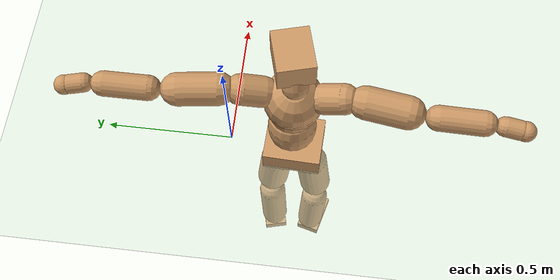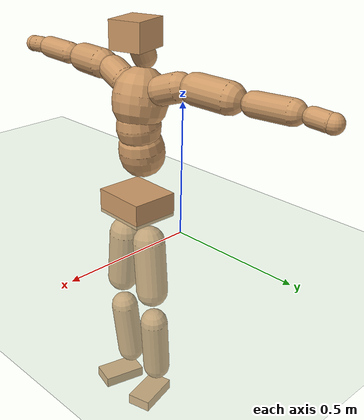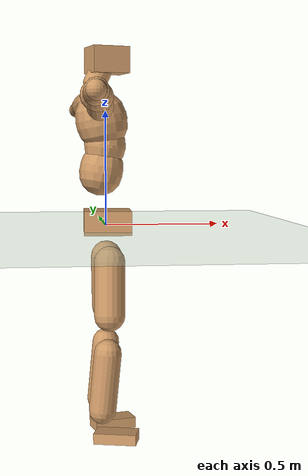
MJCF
<mujoco model="humanoid">
  <compiler coordinate="local" angle="radian"/>
  <default>
    <joint damping="0.0" armature="0.01" stiffness="0.0" limited="true"/>
    <geom conaffinity="1" condim="3" contype="7" margin="0.001" rgba="0.8 0.6 .4 1"/>
  </default>
  <asset>
    <texture type="skybox" builtin="gradient" rgb1=".4 .5 .6" rgb2="0 0 0" width="100" height="100"/>
    <texture builtin="flat" height="1278" mark="cross" markrgb="1 1 1" name="texgeom" random="0.01" rgb1="0.8 0.6 0.4" rgb2="0.8 0.6 0.4" type="cube" width="127"/>
    <texture builtin="checker" height="100" name="texplane" rgb1="0 0 0" rgb2="0.8 0.8 0.8" type="2d" width="100"/>
    <material name="MatPlane" reflectance="0.5" shininess="1" specular="1" texrepeat="60 60" texture="texplane"/>
    <material name="geom" texture="texgeom" texuniform="true"/>
  </asset>
  <worldbody>
    <light cutoff="100" diffuse="1 1 1" dir="-0 0 -1.3" directional="true" exponent="1" pos="0 0 1.3" specular=".1 .1 .1"/>
    <geom conaffinity="1" condim="3" name="floor" pos="0 0 0" rgba="0.8 0.9 0.8 1" size="100 100 .2" type="plane" material="MatPlane"/>
    <body name="Pelvis" pos="-0.002 -0.2545 0.0407">
      <freejoint name="Pelvis"/>
      <geom type="box" contype="1" conaffinity="1" density="500" pos="-0.0107 0.0004 -0.0075" size="0.0959 0.1112 0.0492" quat="0.9998 0.0000 0.0000 -0.0195" name="Pelvis"/>
      <body name="L_Hip" pos="-0.0115 0.062 -0.0848">
        <joint name="L_Hip_x" type="hinge" pos="0 0 0" axis="1 0 0" stiffness="800" damping="80" armature="0.02" range="-180.0000 180.0000"/>
        <joint name="L_Hip_y" type="hinge" pos="0 0 0" axis="0 1 0" stiffness="800" damping="80" armature="0.02" range="-180.0000 180.0000"/>
        <joint name="L_Hip_z" type="hinge" pos="0 0 0" axis="0 0 1" stiffness="800" damping="80" armature="0.02" range="-180.0000 180.0000"/>
        <geom type="capsule" contype="1" conaffinity="1" density="500" fromto="0.0015 0.0076 -0.0730 0.0060 0.0303 -0.2921" size="0.0647" name="L_Hip"/>
        <body name="L_Knee" pos="0.0074 0.0378 -0.3652">
          <joint name="L_Knee_x" type="hinge" pos="0 0 0" axis="1 0 0" stiffness="800" damping="80" armature="0.02" range="-180.0000 180.0000"/>
          <joint name="L_Knee_y" type="hinge" pos="0 0 0" axis="0 1 0" stiffness="800" damping="80" armature="0.02" range="-180.0000 180.0000"/>
          <joint name="L_Knee_z" type="hinge" pos="0 0 0" axis="0 0 1" stiffness="800" damping="80" armature="0.02" range="-180.0000 180.0000"/>
          <geom type="capsule" contype="1" conaffinity="1" density="500" fromto="-0.0081 -0.0032 -0.0819 -0.0322 -0.0129 -0.3278" size="0.0569" name="L_Knee"/>
          <body name="L_Ankle" pos="-0.0403 -0.0162 -0.4097">
            <joint name="L_Ankle_x" type="hinge" pos="0 0 0" axis="1 0 0" stiffness="800" damping="80" armature="0.02" range="-180.0000 180.0000"/>
            <joint name="L_Ankle_y" type="hinge" pos="0 0 0" axis="0 1 0" stiffness="800" damping="80" armature="0.02" range="-180.0000 180.0000"/>
            <joint name="L_Ankle_z" type="hinge" pos="0 0 0" axis="0 0 1" stiffness="800" damping="80" armature="0.02" range="-180.0000 180.0000"/>
            <geom type="box" contype="1" conaffinity="1" density="500" pos="0.0606 0.0154 -0.0284" size="0.0886 0.0493 0.0227" quat="0.9923 0.0000 0.0000 0.1240" name="L_Ankle"/>
            <body name="L_Toe" pos="0.1211 0.0307 -0.0569">
              <joint name="L_Toe_x" type="hinge" pos="0 0 0" axis="1 0 0" stiffness="500" damping="50" armature="0.02" range="-180.0000 180.0000"/>
              <joint name="L_Toe_y" type="hinge" pos="0 0 0" axis="0 1 0" stiffness="500" damping="50" armature="0.02" range="-180.0000 180.0000"/>
              <joint name="L_Toe_z" type="hinge" pos="0 0 0" axis="0 0 1" stiffness="500" damping="50" armature="0.02" range="-180.0000 180.0000"/>
              <geom type="box" contype="1" conaffinity="1" density="500" pos="0.0000 0.0000 0.0286" size="0.001 0.0025 0.0011" quat="0.9916 0.0000 0.0000 0.1296" name="L_Toe"/>
            </body>
          </body>
        </body>
      </body>
      <body name="R_Hip" pos="-0.0061 -0.0636 -0.0937">
        <joint name="R_Hip_x" type="hinge" pos="0 0 0" axis="1 0 0" stiffness="800" damping="80" armature="0.02" range="-180.0000 180.0000"/>
        <joint name="R_Hip_y" type="hinge" pos="0 0 0" axis="0 1 0" stiffness="800" damping="80" armature="0.02" range="-180.0000 180.0000"/>
        <joint name="R_Hip_z" type="hinge" pos="0 0 0" axis="0 0 1" stiffness="800" damping="80" armature="0.02" range="-180.0000 180.0000"/>
        <geom type="capsule" contype="1" conaffinity="1" density="500" fromto="-0.0008 -0.0076 -0.0731 -0.0034 -0.0304 -0.2925" size="0.0643" name="R_Hip"/>
        <body name="R_Knee" pos="-0.0042 -0.038 -0.3656">
          <joint name="R_Knee_x" type="hinge" pos="0 0 0" axis="1 0 0" stiffness="800" damping="80" armature="0.02" range="-180.0000 180.0000"/>
          <joint name="R_Knee_y" type="hinge" pos="0 0 0" axis="0 1 0" stiffness="800" damping="80" armature="0.02" range="-180.0000 180.0000"/>
          <joint name="R_Knee_z" type="hinge" pos="0 0 0" axis="0 0 1" stiffness="800" damping="80" armature="0.02" range="-180.0000 180.0000"/>
          <geom type="capsule" contype="1" conaffinity="1" density="500" fromto="-0.0074 0.0040 -0.0807 -0.0297 0.0160 -0.3228" size="0.0566" name="R_Knee"/>
          <body name="R_Ankle" pos="-0.0371 0.02 -0.4035">
            <joint name="R_Ankle_x" type="hinge" pos="0 0 0" axis="1 0 0" stiffness="800" damping="80" armature="0.02" range="-180.0000 180.0000"/>
            <joint name="R_Ankle_y" type="hinge" pos="0 0 0" axis="0 1 0" stiffness="800" damping="80" armature="0.02" range="-180.0000 180.0000"/>
            <joint name="R_Ankle_z" type="hinge" pos="0 0 0" axis="0 0 1" stiffness="800" damping="80" armature="0.02" range="-180.0000 180.0000"/>
            <geom type="box" contype="1" conaffinity="1" density="500" pos="0.0640 -0.0167 -0.0289" size="0.0879 0.0503 0.0222" quat="0.9919 0.0000 0.0000 -0.1273" name="R_Ankle"/>
            <body name="R_Toe" pos="0.128 -0.0334 -0.0578">
              <joint name="R_Toe_x" type="hinge" pos="0 0 0" axis="1 0 0" stiffness="500" damping="50" armature="0.02" range="-180.0000 180.0000"/>
              <joint name="R_Toe_y" type="hinge" pos="0 0 0" axis="0 1 0" stiffness="500" damping="50" armature="0.02" range="-180.0000 180.0000"/>
              <joint name="R_Toe_z" type="hinge" pos="0 0 0" axis="0 0 1" stiffness="500" damping="50" armature="0.02" range="-180.0000 180.0000"/>
              <geom type="box" contype="1" conaffinity="1" density="500" pos="0.0000 0.0000 0.0289" size="0.0011 0.0025 0.0011" quat="0.9930 0.0000 0.0000 -0.1182" name="R_Toe"/>
            </body>
          </body>
        </body>
      </body>
      <body name="Torso" pos="-0.0466 0.0041 0.1337">
        <joint name="Torso_x" type="hinge" pos="0 0 0" axis="1 0 0" stiffness="1000" damping="100" armature="0.02" range="-180.0000 180.0000"/>
        <joint name="Torso_y" type="hinge" pos="0 0 0" axis="0 1 0" stiffness="1000" damping="100" armature="0.02" range="-180.0000 180.0000"/>
        <joint name="Torso_z" type="hinge" pos="0 0 0" axis="0 0 1" stiffness="1000" damping="100" armature="0.02" range="-180.0000 180.0000"/>
        <geom type="capsule" contype="1" conaffinity="1" density="500" fromto="0.0157 0.0031 0.0854 0.0104 0.0020 0.0569" size="0.0895" name="Torso"/>
        <body name="Spine" pos="0.0261 0.0051 0.1423">
          <joint name="Spine_x" type="hinge" pos="0 0 0" axis="1 0 0" stiffness="1000" damping="100" armature="0.02" range="-180.0000 180.0000"/>
          <joint name="Spine_y" type="hinge" pos="0 0 0" axis="0 1 0" stiffness="1000" damping="100" armature="0.02" range="-180.0000 180.0000"/>
          <joint name="Spine_z" type="hinge" pos="0 0 0" axis="0 0 1" stiffness="1000" damping="100" armature="0.02" range="-180.0000 180.0000"/>
          <geom type="capsule" contype="1" conaffinity="1" density="500" fromto="0.0036 -0.0014 0.0347 0.0024 -0.0010 0.0232" size="0.0859" name="Spine"/>
          <body name="Chest" pos="0.0059 -0.0024 0.0579">
            <joint name="Chest_x" type="hinge" pos="0 0 0" axis="1 0 0" stiffness="1000" damping="100" armature="0.02" range="-180.0000 180.0000"/>
            <joint name="Chest_y" type="hinge" pos="0 0 0" axis="0 1 0" stiffness="1000" damping="100" armature="0.02" range="-180.0000 180.0000"/>
            <joint name="Chest_z" type="hinge" pos="0 0 0" axis="0 0 1" stiffness="1000" damping="100" armature="0.02" range="-180.0000 180.0000"/>
            <geom type="capsule" contype="1" conaffinity="1" density="500" fromto="-0.0205 -0.0047 0.0885 -0.0137 -0.0031 0.0590" size="0.1062" name="Chest"/>
            <body name="Neck" pos="-0.0539 -0.013 0.2112">
              <joint name="Neck_x" type="hinge" pos="0 0 0" axis="1 0 0" stiffness="500" damping="50" armature="0.02" range="-180.0000 180.0000"/>
              <joint name="Neck_y" type="hinge" pos="0 0 0" axis="0 1 0" stiffness="500" damping="50" armature="0.02" range="-180.0000 180.0000"/>
              <joint name="Neck_z" type="hinge" pos="0 0 0" axis="0 0 1" stiffness="500" damping="50" armature="0.02" range="-180.0000 180.0000"/>
              <geom type="capsule" contype="1" conaffinity="1" density="500" fromto="0.0080 0.0019 0.0141 0.0319 0.0075 0.0563" size="0.0458" name="Neck"/>
              <body name="Head" pos="0.0398 0.0094 0.0703">
                <joint name="Head_x" type="hinge" pos="0 0 0" axis="1 0 0" stiffness="500" damping="50" armature="0.02" range="-180.0000 180.0000"/>
                <joint name="Head_y" type="hinge" pos="0 0 0" axis="0 1 0" stiffness="500" damping="50" armature="0.02" range="-180.0000 180.0000"/>
                <joint name="Head_z" type="hinge" pos="0 0 0" axis="0 0 1" stiffness="500" damping="50" armature="0.02" range="-180.0000 180.0000"/>
                <geom type="box" contype="1" conaffinity="1" density="500" pos="0.0209 0.0057 0.0362" size="0.077 0.0643 0.0533" quat="0.9912 0.0000 0.0000 0.1325" name="Head"/>
              </body>
            </body>
            <body name="L_Thorax" pos="-0.0216 0.0739 0.1166">
              <joint name="L_Thorax_x" type="hinge" pos="0 0 0" axis="1 0 0" stiffness="500" damping="50" armature="0.02" range="-180.0000 180.0000"/>
              <joint name="L_Thorax_y" type="hinge" pos="0 0 0" axis="0 1 0" stiffness="500" damping="50" armature="0.02" range="-180.0000 180.0000"/>
              <joint name="L_Thorax_z" type="hinge" pos="0 0 0" axis="0 0 1" stiffness="500" damping="50" armature="0.02" range="-180.0000 180.0000"/>
              <geom type="capsule" contype="1" conaffinity="1" density="500" fromto="-0.0043 0.0254 0.0084 -0.0170 0.1014 0.0336" size="0.055" name="L_Thorax"/>
              <body name="L_Shoulder" pos="-0.0213 0.1268 0.042">
                <joint name="L_Shoulder_x" type="hinge" pos="0 0 0" axis="1 0 0" stiffness="500" damping="50" armature="0.02" range="-720.0000 720.0000"/>
                <joint name="L_Shoulder_y" type="hinge" pos="0 0 0" axis="0 1 0" stiffness="500" damping="50" armature="0.02" range="-720.0000 720.0000"/>
                <joint name="L_Shoulder_z" type="hinge" pos="0 0 0" axis="0 0 1" stiffness="500" damping="50" armature="0.02" range="-720.0000 720.0000"/>
                <geom type="capsule" contype="1" conaffinity="1" density="500" fromto="-0.0050 0.0467 -0.0019 -0.0199 0.1867 -0.0077" size="0.0582" name="L_Shoulder"/>
                <body name="L_Elbow" pos="-0.0249 0.2334 -0.0096">
                  <joint name="L_Elbow_x" type="hinge" pos="0 0 0" axis="1 0 0" stiffness="500" damping="50" armature="0.02" range="-720.0000 720.0000"/>
                  <joint name="L_Elbow_y" type="hinge" pos="0 0 0" axis="0 1 0" stiffness="500" damping="50" armature="0.02" range="-720.0000 720.0000"/>
                  <joint name="L_Elbow_z" type="hinge" pos="0 0 0" axis="0 0 1" stiffness="500" damping="50" armature="0.02" range="-720.0000 720.0000"/>
                  <geom type="capsule" contype="1" conaffinity="1" density="500" fromto="-0.0013 0.0506 0.0023 -0.0050 0.2025 0.0093" size="0.0444" name="L_Elbow"/>
                  <body name="L_Wrist" pos="-0.0063 0.2532 0.0117">
                    <joint name="L_Wrist_x" type="hinge" pos="0 0 0" axis="1 0 0" stiffness="300" damping="30" armature="0.02" range="-180.0000 180.0000"/>
                    <joint name="L_Wrist_y" type="hinge" pos="0 0 0" axis="0 1 0" stiffness="300" damping="30" armature="0.02" range="-180.0000 180.0000"/>
                    <joint name="L_Wrist_z" type="hinge" pos="0 0 0" axis="0 0 1" stiffness="300" damping="30" armature="0.02" range="-180.0000 180.0000"/>
                    <geom type="capsule" contype="1" conaffinity="1" density="500" fromto="-0.0029 0.0168 -0.0020 -0.0118 0.0671 -0.0082" size="0.0336" name="L_Wrist"/>
                    <body name="L_Hand" pos="-0.0147 0.0838 -0.0102">
                      <joint name="L_Hand_x" type="hinge" pos="0 0 0" axis="1 0 0" stiffness="300" damping="30" armature="0.02" range="-180.0000 180.0000"/>
                      <joint name="L_Hand_y" type="hinge" pos="0 0 0" axis="0 1 0" stiffness="300" damping="30" armature="0.02" range="-180.0000 180.0000"/>
                      <joint name="L_Hand_z" type="hinge" pos="0 0 0" axis="0 0 1" stiffness="300" damping="30" armature="0.02" range="-180.0000 180.0000"/>
                      <geom type="sphere" contype="1" conaffinity="1" density="500" size="0.0345" pos="0.0000 0.0000 0.0000" name="L_Hand"/>
                    </body>
                  </body>
                </body>
              </body>
            </body>
            <body name="R_Thorax" pos="-0.027 -0.0845 0.1146">
              <joint name="R_Thorax_x" type="hinge" pos="0 0 0" axis="1 0 0" stiffness="500" damping="50" armature="0.02" range="-180.0000 180.0000"/>
              <joint name="R_Thorax_y" type="hinge" pos="0 0 0" axis="0 1 0" stiffness="500" damping="50" armature="0.02" range="-180.0000 180.0000"/>
              <joint name="R_Thorax_z" type="hinge" pos="0 0 0" axis="0 0 1" stiffness="500" damping="50" armature="0.02" range="-180.0000 180.0000"/>
              <geom type="capsule" contype="1" conaffinity="1" density="500" fromto="-0.0022 -0.0232 0.0087 -0.0089 -0.0929 0.0350" size="0.0544" name="R_Thorax"/>
              <body name="R_Shoulder" pos="-0.0112 -0.1162 0.0437">
                <joint name="R_Shoulder_x" type="hinge" pos="0 0 0" axis="1 0 0" stiffness="500" damping="50" armature="0.02" range="-720.0000 720.0000"/>
                <joint name="R_Shoulder_y" type="hinge" pos="0 0 0" axis="0 1 0" stiffness="500" damping="50" armature="0.02" range="-720.0000 720.0000"/>
                <joint name="R_Shoulder_z" type="hinge" pos="0 0 0" axis="0 0 1" stiffness="500" damping="50" armature="0.02" range="-720.0000 720.0000"/>
                <geom type="capsule" contype="1" conaffinity="1" density="500" fromto="-0.0066 -0.0484 -0.0011 -0.0264 -0.1934 -0.0046" size="0.0583" name="R_Shoulder"/>
                <body name="R_Elbow" pos="-0.0331 -0.2418 -0.0057">
                  <joint name="R_Elbow_x" type="hinge" pos="0 0 0" axis="1 0 0" stiffness="500" damping="50" armature="0.02" range="-720.0000 720.0000"/>
                  <joint name="R_Elbow_y" type="hinge" pos="0 0 0" axis="0 1 0" stiffness="500" damping="50" armature="0.02" range="-720.0000 720.0000"/>
                  <joint name="R_Elbow_z" type="hinge" pos="0 0 0" axis="0 0 1" stiffness="500" damping="50" armature="0.02" range="-720.0000 720.0000"/>
                  <geom type="capsule" contype="1" conaffinity="1" density="500" fromto="-0.0012 -0.0506 0.0005 -0.0048 -0.2023 0.0021" size="0.0446" name="R_Elbow"/>
                  <body name="R_Wrist" pos="-0.006 -0.2529 0.0027">
                    <joint name="R_Wrist_x" type="hinge" pos="0 0 0" axis="1 0 0" stiffness="300" damping="30" armature="0.02" range="-180.0000 180.0000"/>
                    <joint name="R_Wrist_y" type="hinge" pos="0 0 0" axis="0 1 0" stiffness="300" damping="30" armature="0.02" range="-180.0000 180.0000"/>
                    <joint name="R_Wrist_z" type="hinge" pos="0 0 0" axis="0 0 1" stiffness="300" damping="30" armature="0.02" range="-180.0000 180.0000"/>
                    <geom type="capsule" contype="1" conaffinity="1" density="500" fromto="-0.0019 -0.0173 -0.0017 -0.0075 -0.0693 -0.0067" size="0.0344" name="R_Wrist"/>
                    <body name="R_Hand" pos="-0.0093 -0.0866 -0.0083">
                      <joint name="R_Hand_x" type="hinge" pos="0 0 0" axis="1 0 0" stiffness="300" damping="30" armature="0.02" range="-180.0000 180.0000"/>
                      <joint name="R_Hand_y" type="hinge" pos="0 0 0" axis="0 1 0" stiffness="300" damping="30" armature="0.02" range="-180.0000 180.0000"/>
                      <joint name="R_Hand_z" type="hinge" pos="0 0 0" axis="0 0 1" stiffness="300" damping="30" armature="0.02" range="-180.0000 180.0000"/>
                      <geom type="sphere" contype="1" conaffinity="1" density="500" size="0.0353" pos="0.0000 0.0000 0.0000" name="R_Hand"/>
                    </body>
                  </body>
                </body>
              </body>
            </body>
          </body>
        </body>
      </body>
    </body>
  </worldbody>
  <actuator>
    <motor name="L_Hip_x" joint="L_Hip_x" gear="500"/>
    <motor name="L_Hip_y" joint="L_Hip_y" gear="500"/>
    <motor name="L_Hip_z" joint="L_Hip_z" gear="500"/>
    <motor name="L_Knee_x" joint="L_Knee_x" gear="500"/>
    <motor name="L_Knee_y" joint="L_Knee_y" gear="500"/>
    <motor name="L_Knee_z" joint="L_Knee_z" gear="500"/>
    <motor name="L_Ankle_x" joint="L_Ankle_x" gear="500"/>
    <motor name="L_Ankle_y" joint="L_Ankle_y" gear="500"/>
    <motor name="L_Ankle_z" joint="L_Ankle_z" gear="500"/>
    <motor name="L_Toe_x" joint="L_Toe_x" gear="500"/>
    <motor name="L_Toe_y" joint="L_Toe_y" gear="500"/>
    <motor name="L_Toe_z" joint="L_Toe_z" gear="500"/>
    <motor name="R_Hip_x" joint="R_Hip_x" gear="500"/>
    <motor name="R_Hip_y" joint="R_Hip_y" gear="500"/>
    <motor name="R_Hip_z" joint="R_Hip_z" gear="500"/>
    <motor name="R_Knee_x" joint="R_Knee_x" gear="500"/>
    <motor name="R_Knee_y" joint="R_Knee_y" gear="500"/>
    <motor name="R_Knee_z" joint="R_Knee_z" gear="500"/>
    <motor name="R_Ankle_x" joint="R_Ankle_x" gear="500"/>
    <motor name="R_Ankle_y" joint="R_Ankle_y" gear="500"/>
    <motor name="R_Ankle_z" joint="R_Ankle_z" gear="500"/>
    <motor name="R_Toe_x" joint="R_Toe_x" gear="500"/>
    <motor name="R_Toe_y" joint="R_Toe_y" gear="500"/>
    <motor name="R_Toe_z" joint="R_Toe_z" gear="500"/>
    <motor name="Torso_x" joint="Torso_x" gear="500"/>
    <motor name="Torso_y" joint="Torso_y" gear="500"/>
    <motor name="Torso_z" joint="Torso_z" gear="500"/>
    <motor name="Spine_x" joint="Spine_x" gear="500"/>
    <motor name="Spine_y" joint="Spine_y" gear="500"/>
    <motor name="Spine_z" joint="Spine_z" gear="500"/>
    <motor name="Chest_x" joint="Chest_x" gear="500"/>
    <motor name="Chest_y" joint="Chest_y" gear="500"/>
    <motor name="Chest_z" joint="Chest_z" gear="500"/>
    <motor name="Neck_x" joint="Neck_x" gear="500"/>
    <motor name="Neck_y" joint="Neck_y" gear="500"/>
    <motor name="Neck_z" joint="Neck_z" gear="500"/>
    <motor name="Head_x" joint="Head_x" gear="500"/>
    <motor name="Head_y" joint="Head_y" gear="500"/>
    <motor name="Head_z" joint="Head_z" gear="500"/>
    <motor name="L_Thorax_x" joint="L_Thorax_x" gear="500"/>
    <motor name="L_Thorax_y" joint="L_Thorax_y" gear="500"/>
    <motor name="L_Thorax_z" joint="L_Thorax_z" gear="500"/>
    <motor name="L_Shoulder_x" joint="L_Shoulder_x" gear="500"/>
    <motor name="L_Shoulder_y" joint="L_Shoulder_y" gear="500"/>
    <motor name="L_Shoulder_z" joint="L_Shoulder_z" gear="500"/>
    <motor name="L_Elbow_x" joint="L_Elbow_x" gear="500"/>
    <motor name="L_Elbow_y" joint="L_Elbow_y" gear="500"/>
    <motor name="L_Elbow_z" joint="L_Elbow_z" gear="500"/>
    <motor name="L_Wrist_x" joint="L_Wrist_x" gear="500"/>
    <motor name="L_Wrist_y" joint="L_Wrist_y" gear="500"/>
    <motor name="L_Wrist_z" joint="L_Wrist_z" gear="500"/>
    <motor name="L_Hand_x" joint="L_Hand_x" gear="500"/>
    <motor name="L_Hand_y" joint="L_Hand_y" gear="500"/>
    <motor name="L_Hand_z" joint="L_Hand_z" gear="500"/>
    <motor name="R_Thorax_x" joint="R_Thorax_x" gear="500"/>
    <motor name="R_Thorax_y" joint="R_Thorax_y" gear="500"/>
    <motor name="R_Thorax_z" joint="R_Thorax_z" gear="500"/>
    <motor name="R_Shoulder_x" joint="R_Shoulder_x" gear="500"/>
    <motor name="R_Shoulder_y" joint="R_Shoulder_y" gear="500"/>
    <motor name="R_Shoulder_z" joint="R_Shoulder_z" gear="500"/>
    <motor name="R_Elbow_x" joint="R_Elbow_x" gear="500"/>
    <motor name="R_Elbow_y" joint="R_Elbow_y" gear="500"/>
    <motor name="R_Elbow_z" joint="R_Elbow_z" gear="500"/>
    <motor name="R_Wrist_x" joint="R_Wrist_x" gear="500"/>
    <motor name="R_Wrist_y" joint="R_Wrist_y" gear="500"/>
    <motor name="R_Wrist_z" joint="R_Wrist_z" gear="500"/>
    <motor name="R_Hand_x" joint="R_Hand_x" gear="500"/>
    <motor name="R_Hand_y" joint="R_Hand_y" gear="500"/>
    <motor name="R_Hand_z" joint="R_Hand_z" gear="500"/>
  </actuator>
  <contact>
    <exclude body1="Torso" body2="Chest"/>
    <exclude body1="Head" body2="Chest"/>
    <exclude body1="R_Knee" body2="R_Toe"/>
    <exclude body1="R_Knee" body2="L_Ankle"/>
    <exclude body1="R_Knee" body2="L_Toe"/>
    <exclude body1="L_Knee" body2="L_Toe"/>
    <exclude body1="L_Knee" body2="R_Ankle"/>
    <exclude body1="L_Knee" body2="R_Toe"/>
    <exclude body1="L_Shoulder" body2="Chest"/>
    <exclude body1="R_Shoulder" body2="Chest"/>
  </contact>
  <sensor/>
  <size njmax="700" nconmax="700"/>
</mujoco>
